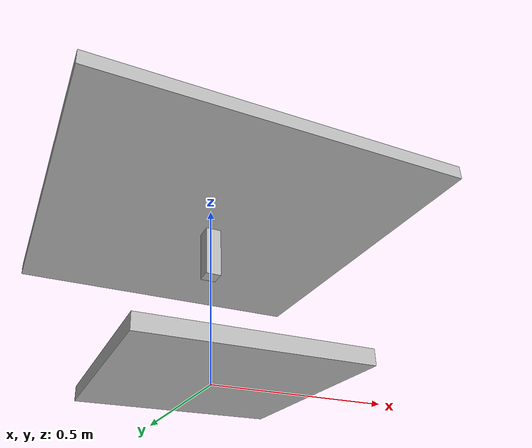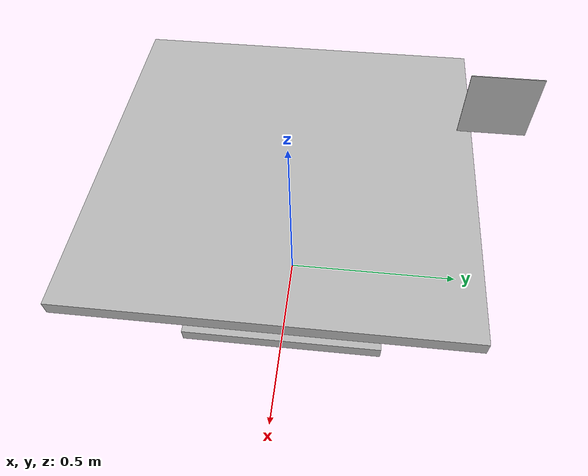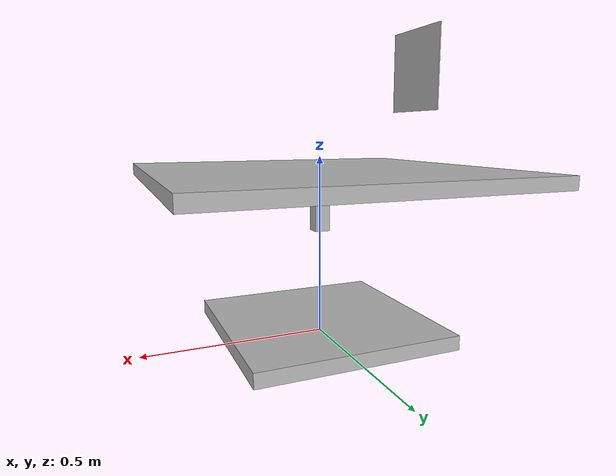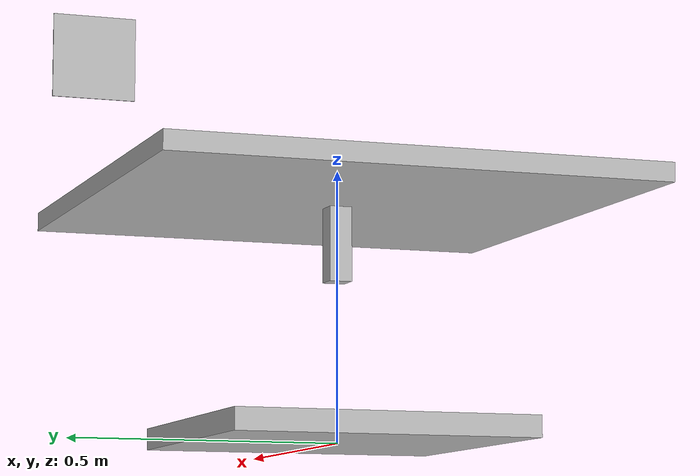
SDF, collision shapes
<?xml version="1.0" ?>
<sdf version="1.5">
  <model name="table_ArUco12">

    <include>
      <uri>model://cafe_table</uri>
      <pose>0 0 0 0 0 0</pose>
    </include>

    <include>
      <uri>model://ArUco_12</uri>
      <pose>0 0.36 0.68 -1.5708 1.5708 0</pose>
    </include>

    <joint name="arm_gripper_joint" type="fixed">
      <parent>mobile_base::chassis</parent>
      <child>simple_gripper::riser</child>
    </joint>

  </model>
</sdf>

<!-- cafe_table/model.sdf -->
<sdf version="1.5">
  <model name="cafe_table">
    <static>true</static>
    <link name="link">
      <collision name="surface">
        <pose>0 0 0.45 0 0 0</pose>
        <geometry>
          <box>
            <size>0.913 0.913 0.035</size>
          </box>
        </geometry>
      </collision>

      <collision name="column">
        <pose>0 0 0.37 0 0 0</pose>
        <geometry>
          <box>
            <size>0.042 0.042 0.15</size>
          </box>
        </geometry>
      </collision>

      <collision name="base">
        <pose>0 0 0.02 0 0 0</pose>
        <geometry>
          <box>
            <size>0.56 0.56 0.04</size>
          </box>
        </geometry>
      </collision>

      <visual name="visual">
        <geometry>
          <mesh>
            <scale>1 1 0.6</scale>
            <uri>file://isr-testbed/cafe_table/meshes/cafe_table.dae</uri>
          </mesh>
        </geometry>
      </visual>
    </link>
  </model>
</sdf>

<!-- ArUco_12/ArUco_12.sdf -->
<sdf version='1.4'>
  <model name="ArUco_12">
	<static>true</static>
          <link name='chassis'>
            <pose>0 0 .1 0 0 0</pose>

            <collision name='collision'>
              <geometry>
                <box>
                  <size>0.15 0.002 0.15</size>
                </box>
              </geometry>
            </collision>

            <visual name='visual'>
              <geometry>
                <mesh>
            	  <uri>model://ArUco_12/meshes/Aruco12.dae</uri>
		  <scale>1 1 1</scale>
          	</mesh>
              </geometry>
            </visual>
          </link>
  </model>
</sdf>
